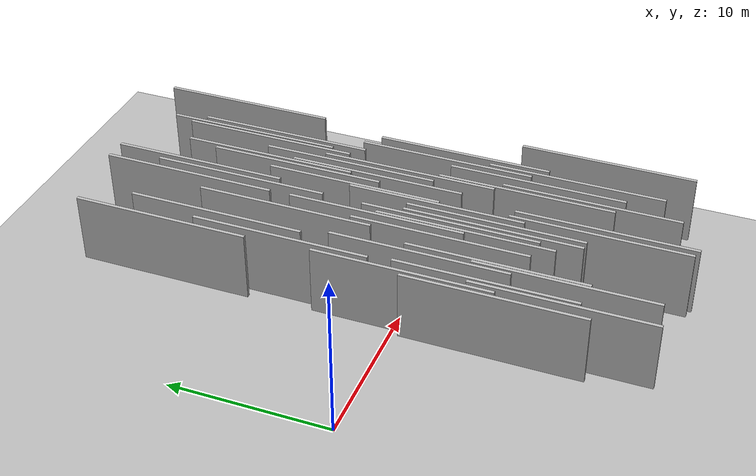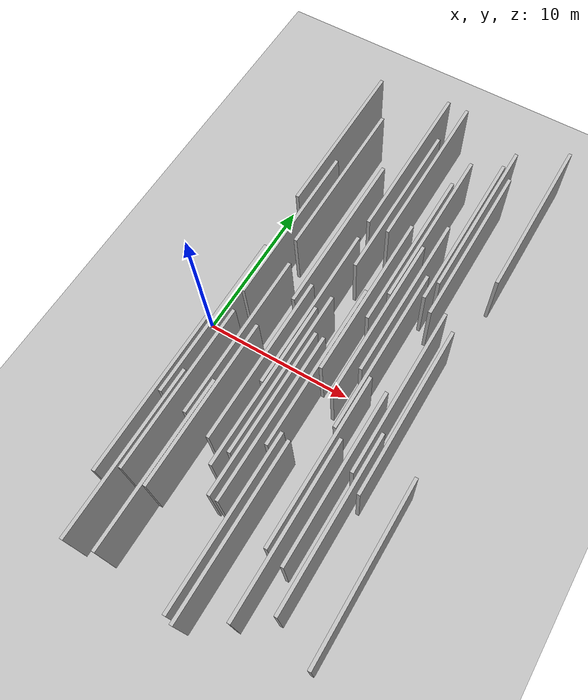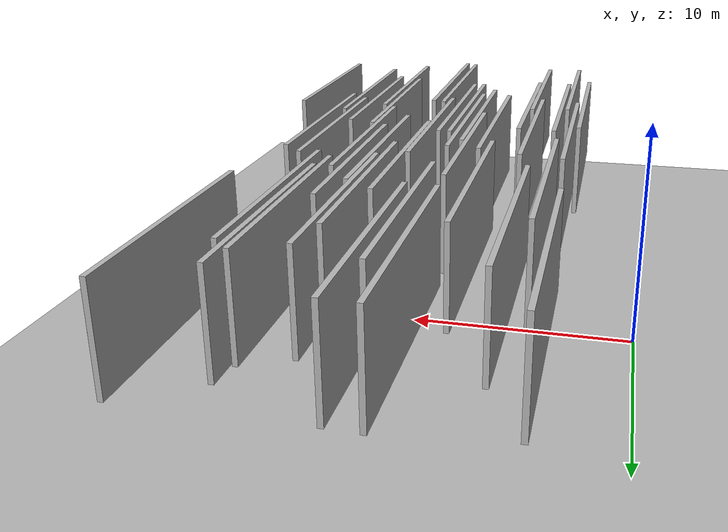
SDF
<?xml version="1.0" encoding="utf-8"?>

<sdf version="1.6">

   <world name="default">

      <gui fullscreen="0">

         <camera name="user_camera">

            <pose>-15 0 4.57585 0 0 0</pose>

            <view_controller>orbit</view_controller>

         </camera>

      </gui>

      <scene>

         <sky>

           <clouds>

             <speed>12</speed>

           </clouds>

         </sky>

         <ambient>0.4 0.4 0.4 1</ambient>

         <background>0.7 0.7 0.7 1</background>

         <shadows>1</shadows>

      </scene>

      <gravity>0 0 -9.8066</gravity>

      <magnetic_field>6e-06 2.3e-05 -4.2e-05</magnetic_field>

      <physics default="0" name="default_physics" type="ode">

         <ode>

            <solver>

               <type>quick</type>

               <iters>10</iters>

               <sor>1.0</sor>

               <use_dynamic_moi_rescaling>0</use_dynamic_moi_rescaling>

            </solver>

            <constraints>

               <cfm>0</cfm>

               <erp>0.2</erp>

               <contact_max_correcting_vel>100</contact_max_correcting_vel>

               <contact_surface_layer>0.001</contact_surface_layer>

            </constraints>

         </ode>

         <max_step_size>0.004</max_step_size>

         <real_time_factor>1</real_time_factor>

         <real_time_update_rate>250</real_time_update_rate>

      </physics>

      <light name="sun" type="directional">

         <cast_shadows>1</cast_shadows>

         <pose>0 0 10 0 0 0</pose>

         <diffuse>0.8 0.8 0.8 1</diffuse>

         <specular>0.2 0.2 0.2 1</specular>

         <attenuation>

            <range>1000</range>

            <constant>0.9</constant>

            <linear>0.01</linear>

            <quadratic>0.001</quadratic>

         </attenuation>

         <direction>-0.5 0.1 -0.9</direction>

      </light>

      <include>

         <name>ground_plane_1</name>

         <uri>model://HANNAS_ground_plane</uri>

         <pose>0 0 0  0 0 0</pose>

      </include>

      <include>

         <name>ground_plane_2</name>

         <uri>model://HANNAS_ground_plane</uri>

         <pose>100 0 0  0 0 0</pose>

      </include>

      <model name="HANNAS_wall_1">

         <static>1</static>

         <pose frame="">15.4531 11.7553 5.0 0.000000 0.000000 1.570796</pose>

         <link name="link">

            <pose frame="">0 0 2.00 0 0 0</pose>

            <collision name="collision">

               <geometry>

                  <box>

                     <size>10.00 0.2 4.00</size>

                  </box>

               </geometry>

               <max_contacts>10</max_contacts>

               <surface>

                  <contact>

                     <ode/>

                  </contact>

                  <bounce/>

                  <friction>

                     <torsional>

                        <ode/>

                     </torsional>

                     <ode/>

                  </friction>

               </surface>

            </collision>

            <visual name="visual">

               <cast_shadows>0</cast_shadows>

               <geometry>

                  <box>

                     <size>10.00 0.2 4.00</size>

                  </box>

               </geometry>

               <material>

                  <script>

                     <uri>model://HANNAS_wall/materials/scripts</uri>

                     <uri>model://HANNAS_wall/materials/textures</uri>

                     <name>vrc/HANNAS_wall</name>

                  </script>

               </material>

            </visual>

            <self_collide>0</self_collide>

            <enable_wind>0</enable_wind>

            <kinematic>0</kinematic>

         </link>

      </model>

      <model name="HANNAS_wall_2">

         <static>1</static>

         <pose frame="">7.5312 11.6981 5.0 0.000000 0.000000 1.570796</pose>

         <link name="link">

            <pose frame="">0 0 2.00 0 0 0</pose>

            <collision name="collision">

               <geometry>

                  <box>

                     <size>10.00 0.2 4.00</size>

                  </box>

               </geometry>

               <max_contacts>10</max_contacts>

               <surface>

                  <contact>

                     <ode/>

                  </contact>

                  <bounce/>

                  <friction>

                     <torsional>

                        <ode/>

                     </torsional>

                     <ode/>

                  </friction>

               </surface>

            </collision>

            <visual name="visual">

               <cast_shadows>0</cast_shadows>

               <geometry>

                  <box>

                     <size>10.00 0.2 4.00</size>

                  </box>

               </geometry>

               <material>

                  <script>

                     <uri>model://HANNAS_wall/materials/scripts</uri>

                     <uri>model://HANNAS_wall/materials/textures</uri>

                     <name>vrc/HANNAS_wall</name>

                  </script>

               </material>

            </visual>

            <self_collide>0</self_collide>

            <enable_wind>0</enable_wind>

            <kinematic>0</kinematic>

         </link>

      </model>

      <model name="HANNAS_wall_3">

         <static>1</static>

         <pose frame="">11.5941 3.6500 5.0 0.000000 0.000000 1.570796</pose>

         <link name="link">

            <pose frame="">0 0 2.00 0 0 0</pose>

            <collision name="collision">

               <geometry>

                  <box>

                     <size>10.00 0.2 4.00</size>

                  </box>

               </geometry>

               <max_contacts>10</max_contacts>

               <surface>

                  <contact>

                     <ode/>

                  </contact>

                  <bounce/>

                  <friction>

                     <torsional>

                        <ode/>

                     </torsional>

                     <ode/>

                  </friction>

               </surface>

            </collision>

            <visual name="visual">

               <cast_shadows>0</cast_shadows>

               <geometry>

                  <box>

                     <size>10.00 0.2 4.00</size>

                  </box>

               </geometry>

               <material>

                  <script>

                     <uri>model://HANNAS_wall/materials/scripts</uri>

                     <uri>model://HANNAS_wall/materials/textures</uri>

                     <name>vrc/HANNAS_wall</name>

                  </script>

               </material>

            </visual>

            <self_collide>0</self_collide>

            <enable_wind>0</enable_wind>

            <kinematic>0</kinematic>

         </link>

      </model>

      <model name="HANNAS_wall_4">

         <static>1</static>

         <pose frame="">5.4451 -10.5621 5.0 0.000000 0.000000 1.570796</pose>

         <link name="link">

            <pose frame="">0 0 2.00 0 0 0</pose>

            <collision name="collision">

               <geometry>

                  <box>

                     <size>10.00 0.2 4.00</size>

                  </box>

               </geometry>

               <max_contacts>10</max_contacts>

               <surface>

                  <contact>

                     <ode/>

                  </contact>

                  <bounce/>

                  <friction>

                     <torsional>

                        <ode/>

                     </torsional>

                     <ode/>

                  </friction>

               </surface>

            </collision>

            <visual name="visual">

               <cast_shadows>0</cast_shadows>

               <geometry>

                  <box>

                     <size>10.00 0.2 4.00</size>

                  </box>

               </geometry>

               <material>

                  <script>

                     <uri>model://HANNAS_wall/materials/scripts</uri>

                     <uri>model://HANNAS_wall/materials/textures</uri>

                     <name>vrc/HANNAS_wall</name>

                  </script>

               </material>

            </visual>

            <self_collide>0</self_collide>

            <enable_wind>0</enable_wind>

            <kinematic>0</kinematic>

         </link>

      </model>

      <model name="HANNAS_wall_5">

         <static>1</static>

         <pose frame="">5.1329 -2.7980 5.0 0.000000 0.000000 1.570796</pose>

         <link name="link">

            <pose frame="">0 0 2.00 0 0 0</pose>

            <collision name="collision">

               <geometry>

                  <box>

                     <size>10.00 0.2 4.00</size>

                  </box>

               </geometry>

               <max_contacts>10</max_contacts>

               <surface>

                  <contact>

                     <ode/>

                  </contact>

                  <bounce/>

                  <friction>

                     <torsional>

                        <ode/>

                     </torsional>

                     <ode/>

                  </friction>

               </surface>

            </collision>

            <visual name="visual">

               <cast_shadows>0</cast_shadows>

               <geometry>

                  <box>

                     <size>10.00 0.2 4.00</size>

                  </box>

               </geometry>

               <material>

                  <script>

                     <uri>model://HANNAS_wall/materials/scripts</uri>

                     <uri>model://HANNAS_wall/materials/textures</uri>

                     <name>vrc/HANNAS_wall</name>

                  </script>

               </material>

            </visual>

            <self_collide>0</self_collide>

            <enable_wind>0</enable_wind>

            <kinematic>0</kinematic>

         </link>

      </model>

      <model name="HANNAS_wall_6">

         <static>1</static>

         <pose frame="">3.1832 11.1690 5.0 0.000000 0.000000 1.570796</pose>

         <link name="link">

            <pose frame="">0 0 2.00 0 0 0</pose>

            <collision name="collision">

               <geometry>

                  <box>

                     <size>10.00 0.2 4.00</size>

                  </box>

               </geometry>

               <max_contacts>10</max_contacts>

               <surface>

                  <contact>

                     <ode/>

                  </contact>

                  <bounce/>

                  <friction>

                     <torsional>

                        <ode/>

                     </torsional>

                     <ode/>

                  </friction>

               </surface>

            </collision>

            <visual name="visual">

               <cast_shadows>0</cast_shadows>

               <geometry>

                  <box>

                     <size>10.00 0.2 4.00</size>

                  </box>

               </geometry>

               <material>

                  <script>

                     <uri>model://HANNAS_wall/materials/scripts</uri>

                     <uri>model://HANNAS_wall/materials/textures</uri>

                     <name>vrc/HANNAS_wall</name>

                  </script>

               </material>

            </visual>

            <self_collide>0</self_collide>

            <enable_wind>0</enable_wind>

            <kinematic>0</kinematic>

         </link>

      </model>

      <model name="HANNAS_wall_7">

         <static>1</static>

         <pose frame="">3.4054 -2.4677 5.0 0.000000 0.000000 1.570796</pose>

         <link name="link">

            <pose frame="">0 0 2.00 0 0 0</pose>

            <collision name="collision">

               <geometry>

                  <box>

                     <size>10.00 0.2 4.00</size>

                  </box>

               </geometry>

               <max_contacts>10</max_contacts>

               <surface>

                  <contact>

                     <ode/>

                  </contact>

                  <bounce/>

                  <friction>

                     <torsional>

                        <ode/>

                     </torsional>

                     <ode/>

                  </friction>

               </surface>

            </collision>

            <visual name="visual">

               <cast_shadows>0</cast_shadows>

               <geometry>

                  <box>

                     <size>10.00 0.2 4.00</size>

                  </box>

               </geometry>

               <material>

                  <script>

                     <uri>model://HANNAS_wall/materials/scripts</uri>

                     <uri>model://HANNAS_wall/materials/textures</uri>

                     <name>vrc/HANNAS_wall</name>

                  </script>

               </material>

            </visual>

            <self_collide>0</self_collide>

            <enable_wind>0</enable_wind>

            <kinematic>0</kinematic>

         </link>

      </model>

      <model name="HANNAS_wall_8">

         <static>1</static>

         <pose frame="">6.8893 -3.3155 5.0 0.000000 0.000000 1.570796</pose>

         <link name="link">

            <pose frame="">0 0 2.00 0 0 0</pose>

            <collision name="collision">

               <geometry>

                  <box>

                     <size>10.00 0.2 4.00</size>

                  </box>

               </geometry>

               <max_contacts>10</max_contacts>

               <surface>

                  <contact>

                     <ode/>

                  </contact>

                  <bounce/>

                  <friction>

                     <torsional>

                        <ode/>

                     </torsional>

                     <ode/>

                  </friction>

               </surface>

            </collision>

            <visual name="visual">

               <cast_shadows>0</cast_shadows>

               <geometry>

                  <box>

                     <size>10.00 0.2 4.00</size>

                  </box>

               </geometry>

               <material>

                  <script>

                     <uri>model://HANNAS_wall/materials/scripts</uri>

                     <uri>model://HANNAS_wall/materials/textures</uri>

                     <name>vrc/HANNAS_wall</name>

                  </script>

               </material>

            </visual>

            <self_collide>0</self_collide>

            <enable_wind>0</enable_wind>

            <kinematic>0</kinematic>

         </link>

      </model>

      <model name="HANNAS_wall_9">

         <static>1</static>

         <pose frame="">13.9263 -1.3041 5.0 0.000000 0.000000 1.570796</pose>

         <link name="link">

            <pose frame="">0 0 2.00 0 0 0</pose>

            <collision name="collision">

               <geometry>

                  <box>

                     <size>10.00 0.2 4.00</size>

                  </box>

               </geometry>

               <max_contacts>10</max_contacts>

               <surface>

                  <contact>

                     <ode/>

                  </contact>

                  <bounce/>

                  <friction>

                     <torsional>

                        <ode/>

                     </torsional>

                     <ode/>

                  </friction>

               </surface>

            </collision>

            <visual name="visual">

               <cast_shadows>0</cast_shadows>

               <geometry>

                  <box>

                     <size>10.00 0.2 4.00</size>

                  </box>

               </geometry>

               <material>

                  <script>

                     <uri>model://HANNAS_wall/materials/scripts</uri>

                     <uri>model://HANNAS_wall/materials/textures</uri>

                     <name>vrc/HANNAS_wall</name>

                  </script>

               </material>

            </visual>

            <self_collide>0</self_collide>

            <enable_wind>0</enable_wind>

            <kinematic>0</kinematic>

         </link>

      </model>

      <model name="HANNAS_wall_10">

         <static>1</static>

         <pose frame="">3.8024 -10.8481 5.0 0.000000 0.000000 1.570796</pose>

         <link name="link">

            <pose frame="">0 0 2.00 0 0 0</pose>

            <collision name="collision">

               <geometry>

                  <box>

                     <size>10.00 0.2 4.00</size>

                  </box>

               </geometry>

               <max_contacts>10</max_contacts>

               <surface>

                  <contact>

                     <ode/>

                  </contact>

                  <bounce/>

                  <friction>

                     <torsional>

                        <ode/>

                     </torsional>

                     <ode/>

                  </friction>

               </surface>

            </collision>

            <visual name="visual">

               <cast_shadows>0</cast_shadows>

               <geometry>

                  <box>

                     <size>10.00 0.2 4.00</size>

                  </box>

               </geometry>

               <material>

                  <script>

                     <uri>model://HANNAS_wall/materials/scripts</uri>

                     <uri>model://HANNAS_wall/materials/textures</uri>

                     <name>vrc/HANNAS_wall</name>

                  </script>

               </material>

            </visual>

            <self_collide>0</self_collide>

            <enable_wind>0</enable_wind>

            <kinematic>0</kinematic>

         </link>

      </model>

      <model name="HANNAS_wall_11">

         <static>1</static>

         <pose frame="">10.4314 6.4024 5.0 0.000000 0.000000 1.570796</pose>

         <link name="link">

            <pose frame="">0 0 2.00 0 0 0</pose>

            <collision name="collision">

               <geometry>

                  <box>

                     <size>10.00 0.2 4.00</size>

                  </box>

               </geometry>

               <max_contacts>10</max_contacts>

               <surface>

                  <contact>

                     <ode/>

                  </contact>

                  <bounce/>

                  <friction>

                     <torsional>

                        <ode/>

                     </torsional>

                     <ode/>

                  </friction>

               </surface>

            </collision>

            <visual name="visual">

               <cast_shadows>0</cast_shadows>

               <geometry>

                  <box>

                     <size>10.00 0.2 4.00</size>

                  </box>

               </geometry>

               <material>

                  <script>

                     <uri>model://HANNAS_wall/materials/scripts</uri>

                     <uri>model://HANNAS_wall/materials/textures</uri>

                     <name>vrc/HANNAS_wall</name>

                  </script>

               </material>

            </visual>

            <self_collide>0</self_collide>

            <enable_wind>0</enable_wind>

            <kinematic>0</kinematic>

         </link>

      </model>

      <model name="HANNAS_wall_12">

         <static>1</static>

         <pose frame="">7.5670 0.5276 5.0 0.000000 0.000000 1.570796</pose>

         <link name="link">

            <pose frame="">0 0 2.00 0 0 0</pose>

            <collision name="collision">

               <geometry>

                  <box>

                     <size>10.00 0.2 4.00</size>

                  </box>

               </geometry>

               <max_contacts>10</max_contacts>

               <surface>

                  <contact>

                     <ode/>

                  </contact>

                  <bounce/>

                  <friction>

                     <torsional>

                        <ode/>

                     </torsional>

                     <ode/>

                  </friction>

               </surface>

            </collision>

            <visual name="visual">

               <cast_shadows>0</cast_shadows>

               <geometry>

                  <box>

                     <size>10.00 0.2 4.00</size>

                  </box>

               </geometry>

               <material>

                  <script>

                     <uri>model://HANNAS_wall/materials/scripts</uri>

                     <uri>model://HANNAS_wall/materials/textures</uri>

                     <name>vrc/HANNAS_wall</name>

                  </script>

               </material>

            </visual>

            <self_collide>0</self_collide>

            <enable_wind>0</enable_wind>

            <kinematic>0</kinematic>

         </link>

      </model>

      <model name="HANNAS_wall_13">

         <static>1</static>

         <pose frame="">12.0381 0.2697 5.0 0.000000 0.000000 1.570796</pose>

         <link name="link">

            <pose frame="">0 0 2.00 0 0 0</pose>

            <collision name="collision">

               <geometry>

                  <box>

                     <size>10.00 0.2 4.00</size>

                  </box>

               </geometry>

               <max_contacts>10</max_contacts>

               <surface>

                  <contact>

                     <ode/>

                  </contact>

                  <bounce/>

                  <friction>

                     <torsional>

                        <ode/>

                     </torsional>

                     <ode/>

                  </friction>

               </surface>

            </collision>

            <visual name="visual">

               <cast_shadows>0</cast_shadows>

               <geometry>

                  <box>

                     <size>10.00 0.2 4.00</size>

                  </box>

               </geometry>

               <material>

                  <script>

                     <uri>model://HANNAS_wall/materials/scripts</uri>

                     <uri>model://HANNAS_wall/materials/textures</uri>

                     <name>vrc/HANNAS_wall</name>

                  </script>

               </material>

            </visual>

            <self_collide>0</self_collide>

            <enable_wind>0</enable_wind>

            <kinematic>0</kinematic>

         </link>

      </model>

      <model name="HANNAS_wall_14">

         <static>1</static>

         <pose frame="">12.2694 -6.4486 5.0 0.000000 0.000000 1.570796</pose>

         <link name="link">

            <pose frame="">0 0 2.00 0 0 0</pose>

            <collision name="collision">

               <geometry>

                  <box>

                     <size>10.00 0.2 4.00</size>

                  </box>

               </geometry>

               <max_contacts>10</max_contacts>

               <surface>

                  <contact>

                     <ode/>

                  </contact>

                  <bounce/>

                  <friction>

                     <torsional>

                        <ode/>

                     </torsional>

                     <ode/>

                  </friction>

               </surface>

            </collision>

            <visual name="visual">

               <cast_shadows>0</cast_shadows>

               <geometry>

                  <box>

                     <size>10.00 0.2 4.00</size>

                  </box>

               </geometry>

               <material>

                  <script>

                     <uri>model://HANNAS_wall/materials/scripts</uri>

                     <uri>model://HANNAS_wall/materials/textures</uri>

                     <name>vrc/HANNAS_wall</name>

                  </script>

               </material>

            </visual>

            <self_collide>0</self_collide>

            <enable_wind>0</enable_wind>

            <kinematic>0</kinematic>

         </link>

      </model>

      <model name="HANNAS_wall_15">

         <static>1</static>

         <pose frame="">16.7560 -9.9379 5.0 0.000000 0.000000 1.570796</pose>

         <link name="link">

            <pose frame="">0 0 2.00 0 0 0</pose>

            <collision name="collision">

               <geometry>

                  <box>

                     <size>10.00 0.2 4.00</size>

                  </box>

               </geometry>

               <max_contacts>10</max_contacts>

               <surface>

                  <contact>

                     <ode/>

                  </contact>

                  <bounce/>

                  <friction>

                     <torsional>

                        <ode/>

                     </torsional>

                     <ode/>

                  </friction>

               </surface>

            </collision>

            <visual name="visual">

               <cast_shadows>0</cast_shadows>

               <geometry>

                  <box>

                     <size>10.00 0.2 4.00</size>

                  </box>

               </geometry>

               <material>

                  <script>

                     <uri>model://HANNAS_wall/materials/scripts</uri>

                     <uri>model://HANNAS_wall/materials/textures</uri>

                     <name>vrc/HANNAS_wall</name>

                  </script>

               </material>

            </visual>

            <self_collide>0</self_collide>

            <enable_wind>0</enable_wind>

            <kinematic>0</kinematic>

         </link>

      </model>

      <model name="HANNAS_wall_16">

         <static>1</static>

         <pose frame="">8.7775 11.6468 5.0 0.000000 0.000000 1.570796</pose>

         <link name="link">

            <pose frame="">0 0 2.00 0 0 0</pose>

            <collision name="collision">

               <geometry>

                  <box>

                     <size>10.00 0.2 4.00</size>

                  </box>

               </geometry>

               <max_contacts>10</max_contacts>

               <surface>

                  <contact>

                     <ode/>

                  </contact>

                  <bounce/>

                  <friction>

                     <torsional>

                        <ode/>

                     </torsional>

                     <ode/>

                  </friction>

               </surface>

            </collision>

            <visual name="visual">

               <cast_shadows>0</cast_shadows>

               <geometry>

                  <box>

                     <size>10.00 0.2 4.00</size>

                  </box>

               </geometry>

               <material>

                  <script>

                     <uri>model://HANNAS_wall/materials/scripts</uri>

                     <uri>model://HANNAS_wall/materials/textures</uri>

                     <name>vrc/HANNAS_wall</name>

                  </script>

               </material>

            </visual>

            <self_collide>0</self_collide>

            <enable_wind>0</enable_wind>

            <kinematic>0</kinematic>

         </link>

      </model>

      <model name="HANNAS_wall_17">

         <static>1</static>

         <pose frame="">9.7936 2.6849 5.0 0.000000 0.000000 1.570796</pose>

         <link name="link">

            <pose frame="">0 0 2.00 0 0 0</pose>

            <collision name="collision">

               <geometry>

                  <box>

                     <size>10.00 0.2 4.00</size>

                  </box>

               </geometry>

               <max_contacts>10</max_contacts>

               <surface>

                  <contact>

                     <ode/>

                  </contact>

                  <bounce/>

                  <friction>

                     <torsional>

                        <ode/>

                     </torsional>

                     <ode/>

                  </friction>

               </surface>

            </collision>

            <visual name="visual">

               <cast_shadows>0</cast_shadows>

               <geometry>

                  <box>

                     <size>10.00 0.2 4.00</size>

                  </box>

               </geometry>

               <material>

                  <script>

                     <uri>model://HANNAS_wall/materials/scripts</uri>

                     <uri>model://HANNAS_wall/materials/textures</uri>

                     <name>vrc/HANNAS_wall</name>

                  </script>

               </material>

            </visual>

            <self_collide>0</self_collide>

            <enable_wind>0</enable_wind>

            <kinematic>0</kinematic>

         </link>

      </model>

      <model name="HANNAS_wall_18">

         <static>1</static>

         <pose frame="">13.3818 -6.7837 5.0 0.000000 0.000000 1.570796</pose>

         <link name="link">

            <pose frame="">0 0 2.00 0 0 0</pose>

            <collision name="collision">

               <geometry>

                  <box>

                     <size>10.00 0.2 4.00</size>

                  </box>

               </geometry>

               <max_contacts>10</max_contacts>

               <surface>

                  <contact>

                     <ode/>

                  </contact>

                  <bounce/>

                  <friction>

                     <torsional>

                        <ode/>

                     </torsional>

                     <ode/>

                  </friction>

               </surface>

            </collision>

            <visual name="visual">

               <cast_shadows>0</cast_shadows>

               <geometry>

                  <box>

                     <size>10.00 0.2 4.00</size>

                  </box>

               </geometry>

               <material>

                  <script>

                     <uri>model://HANNAS_wall/materials/scripts</uri>

                     <uri>model://HANNAS_wall/materials/textures</uri>

                     <name>vrc/HANNAS_wall</name>

                  </script>

               </material>

            </visual>

            <self_collide>0</self_collide>

            <enable_wind>0</enable_wind>

            <kinematic>0</kinematic>

         </link>

      </model>

      <model name="HANNAS_wall_19">

         <static>1</static>

         <pose frame="">8.5625 -5.6985 5.0 0.000000 0.000000 1.570796</pose>

         <link name="link">

            <pose frame="">0 0 2.00 0 0 0</pose>

            <collision name="collision">

               <geometry>

                  <box>

                     <size>10.00 0.2 4.00</size>

                  </box>

               </geometry>

               <max_contacts>10</max_contacts>

               <surface>

                  <contact>

                     <ode/>

                  </contact>

                  <bounce/>

                  <friction>

                     <torsional>

                        <ode/>

                     </torsional>

                     <ode/>

                  </friction>

               </surface>

            </collision>

            <visual name="visual">

               <cast_shadows>0</cast_shadows>

               <geometry>

                  <box>

                     <size>10.00 0.2 4.00</size>

                  </box>

               </geometry>

               <material>

                  <script>

                     <uri>model://HANNAS_wall/materials/scripts</uri>

                     <uri>model://HANNAS_wall/materials/textures</uri>

                     <name>vrc/HANNAS_wall</name>

                  </script>

               </material>

            </visual>

            <self_collide>0</self_collide>

            <enable_wind>0</enable_wind>

            <kinematic>0</kinematic>

         </link>

      </model>

      <model name="HANNAS_wall_20">

         <static>1</static>

         <pose frame="">4.1009 -6.7171 5.0 0.000000 0.000000 1.570796</pose>

         <link name="link">

            <pose frame="">0 0 2.00 0 0 0</pose>

            <collision name="collision">

               <geometry>

                  <box>

                     <size>10.00 0.2 4.00</size>

                  </box>

               </geometry>

               <max_contacts>10</max_contacts>

               <surface>

                  <contact>

                     <ode/>

                  </contact>

                  <bounce/>

                  <friction>

                     <torsional>

                        <ode/>

                     </torsional>

                     <ode/>

                  </friction>

               </surface>

            </collision>

            <visual name="visual">

               <cast_shadows>0</cast_shadows>

               <geometry>

                  <box>

                     <size>10.00 0.2 4.00</size>

                  </box>

               </geometry>

               <material>

                  <script>

                     <uri>model://HANNAS_wall/materials/scripts</uri>

                     <uri>model://HANNAS_wall/materials/textures</uri>

                     <name>vrc/HANNAS_wall</name>

                  </script>

               </material>

            </visual>

            <self_collide>0</self_collide>

            <enable_wind>0</enable_wind>

            <kinematic>0</kinematic>

         </link>

      </model>

      <model name="HANNAS_wall_21">

         <static>1</static>

         <pose frame="">14.7461 -2.0844 5.0 0.000000 0.000000 1.570796</pose>

         <link name="link">

            <pose frame="">0 0 2.00 0 0 0</pose>

            <collision name="collision">

               <geometry>

                  <box>

                     <size>10.00 0.2 4.00</size>

                  </box>

               </geometry>

               <max_contacts>10</max_contacts>

               <surface>

                  <contact>

                     <ode/>

                  </contact>

                  <bounce/>

                  <friction>

                     <torsional>

                        <ode/>

                     </torsional>

                     <ode/>

                  </friction>

               </surface>

            </collision>

            <visual name="visual">

               <cast_shadows>0</cast_shadows>

               <geometry>

                  <box>

                     <size>10.00 0.2 4.00</size>

                  </box>

               </geometry>

               <material>

                  <script>

                     <uri>model://HANNAS_wall/materials/scripts</uri>

                     <uri>model://HANNAS_wall/materials/textures</uri>

                     <name>vrc/HANNAS_wall</name>

                  </script>

               </material>

            </visual>

            <self_collide>0</self_collide>

            <enable_wind>0</enable_wind>

            <kinematic>0</kinematic>

         </link>

      </model>

      <model name="HANNAS_wall_22">

         <static>1</static>

         <pose frame="">12.7361 10.1466 5.0 0.000000 0.000000 1.570796</pose>

         <link name="link">

            <pose frame="">0 0 2.00 0 0 0</pose>

            <collision name="collision">

               <geometry>

                  <box>

                     <size>10.00 0.2 4.00</size>

                  </box>

               </geometry>

               <max_contacts>10</max_contacts>

               <surface>

                  <contact>

                     <ode/>

                  </contact>

                  <bounce/>

                  <friction>

                     <torsional>

                        <ode/>

                     </torsional>

                     <ode/>

                  </friction>

               </surface>

            </collision>

            <visual name="visual">

               <cast_shadows>0</cast_shadows>

               <geometry>

                  <box>

                     <size>10.00 0.2 4.00</size>

                  </box>

               </geometry>

               <material>

                  <script>

                     <uri>model://HANNAS_wall/materials/scripts</uri>

                     <uri>model://HANNAS_wall/materials/textures</uri>

                     <name>vrc/HANNAS_wall</name>

                  </script>

               </material>

            </visual>

            <self_collide>0</self_collide>

            <enable_wind>0</enable_wind>

            <kinematic>0</kinematic>

         </link>

      </model>

      <model name="HANNAS_wall_23">

         <static>1</static>

         <pose frame="">3.0648 -7.4768 5.0 0.000000 0.000000 1.570796</pose>

         <link name="link">

            <pose frame="">0 0 2.00 0 0 0</pose>

            <collision name="collision">

               <geometry>

                  <box>

                     <size>10.00 0.2 4.00</size>

                  </box>

               </geometry>

               <max_contacts>10</max_contacts>

               <surface>

                  <contact>

                     <ode/>

                  </contact>

                  <bounce/>

                  <friction>

                     <torsional>

                        <ode/>

                     </torsional>

                     <ode/>

                  </friction>

               </surface>

            </collision>

            <visual name="visual">

               <cast_shadows>0</cast_shadows>

               <geometry>

                  <box>

                     <size>10.00 0.2 4.00</size>

                  </box>

               </geometry>

               <material>

                  <script>

                     <uri>model://HANNAS_wall/materials/scripts</uri>

                     <uri>model://HANNAS_wall/materials/textures</uri>

                     <name>vrc/HANNAS_wall</name>

                  </script>

               </material>

            </visual>

            <self_collide>0</self_collide>

            <enable_wind>0</enable_wind>

            <kinematic>0</kinematic>

         </link>

      </model>

      <model name="HANNAS_wall_24">

         <static>1</static>

         <pose frame="">12.6230 -10.0456 5.0 0.000000 0.000000 1.570796</pose>

         <link name="link">

            <pose frame="">0 0 2.00 0 0 0</pose>

            <collision name="collision">

               <geometry>

                  <box>

                     <size>10.00 0.2 4.00</size>

                  </box>

               </geometry>

               <max_contacts>10</max_contacts>

               <surface>

                  <contact>

                     <ode/>

                  </contact>

                  <bounce/>

                  <friction>

                     <torsional>

                        <ode/>

                     </torsional>

                     <ode/>

                  </friction>

               </surface>

            </collision>

            <visual name="visual">

               <cast_shadows>0</cast_shadows>

               <geometry>

                  <box>

                     <size>10.00 0.2 4.00</size>

                  </box>

               </geometry>

               <material>

                  <script>

                     <uri>model://HANNAS_wall/materials/scripts</uri>

                     <uri>model://HANNAS_wall/materials/textures</uri>

                     <name>vrc/HANNAS_wall</name>

                  </script>

               </material>

            </visual>

            <self_collide>0</self_collide>

            <enable_wind>0</enable_wind>

            <kinematic>0</kinematic>

         </link>

      </model>

      <model name="HANNAS_wall_25">

         <static>1</static>

         <pose frame="">14.2860 -8.7654 5.0 0.000000 0.000000 1.570796</pose>

         <link name="link">

            <pose frame="">0 0 2.00 0 0 0</pose>

            <collision name="collision">

               <geometry>

                  <box>

                     <size>10.00 0.2 4.00</size>

                  </box>

               </geometry>

               <max_contacts>10</max_contacts>

               <surface>

                  <contact>

                     <ode/>

                  </contact>

                  <bounce/>

                  <friction>

                     <torsional>

                        <ode/>

                     </torsional>

                     <ode/>

                  </friction>

               </surface>

            </collision>

            <visual name="visual">

               <cast_shadows>0</cast_shadows>

               <geometry>

                  <box>

                     <size>10.00 0.2 4.00</size>

                  </box>

               </geometry>

               <material>

                  <script>

                     <uri>model://HANNAS_wall/materials/scripts</uri>

                     <uri>model://HANNAS_wall/materials/textures</uri>

                     <name>vrc/HANNAS_wall</name>

                  </script>

               </material>

            </visual>

            <self_collide>0</self_collide>

            <enable_wind>0</enable_wind>

            <kinematic>0</kinematic>

         </link>

      </model>

      <model name="HANNAS_wall_26">

         <static>1</static>

         <pose frame="">10.9788 1.7926 5.0 0.000000 0.000000 1.570796</pose>

         <link name="link">

            <pose frame="">0 0 2.00 0 0 0</pose>

            <collision name="collision">

               <geometry>

                  <box>

                     <size>10.00 0.2 4.00</size>

                  </box>

               </geometry>

               <max_contacts>10</max_contacts>

               <surface>

                  <contact>

                     <ode/>

                  </contact>

                  <bounce/>

                  <friction>

                     <torsional>

                        <ode/>

                     </torsional>

                     <ode/>

                  </friction>

               </surface>

            </collision>

            <visual name="visual">

               <cast_shadows>0</cast_shadows>

               <geometry>

                  <box>

                     <size>10.00 0.2 4.00</size>

                  </box>

               </geometry>

               <material>

                  <script>

                     <uri>model://HANNAS_wall/materials/scripts</uri>

                     <uri>model://HANNAS_wall/materials/textures</uri>

                     <name>vrc/HANNAS_wall</name>

                  </script>

               </material>

            </visual>

            <self_collide>0</self_collide>

            <enable_wind>0</enable_wind>

            <kinematic>0</kinematic>

         </link>

      </model>

      <model name="HANNAS_wall_27">

         <static>1</static>

         <pose frame="">9.5898 -2.1866 5.0 0.000000 0.000000 1.570796</pose>

         <link name="link">

            <pose frame="">0 0 2.00 0 0 0</pose>

            <collision name="collision">

               <geometry>

                  <box>

                     <size>10.00 0.2 4.00</size>

                  </box>

               </geometry>

               <max_contacts>10</max_contacts>

               <surface>

                  <contact>

                     <ode/>

                  </contact>

                  <bounce/>

                  <friction>

                     <torsional>

                        <ode/>

                     </torsional>

                     <ode/>

                  </friction>

               </surface>

            </collision>

            <visual name="visual">

               <cast_shadows>0</cast_shadows>

               <geometry>

                  <box>

                     <size>10.00 0.2 4.00</size>

                  </box>

               </geometry>

               <material>

                  <script>

                     <uri>model://HANNAS_wall/materials/scripts</uri>

                     <uri>model://HANNAS_wall/materials/textures</uri>

                     <name>vrc/HANNAS_wall</name>

                  </script>

               </material>

            </visual>

            <self_collide>0</self_collide>

            <enable_wind>0</enable_wind>

            <kinematic>0</kinematic>

         </link>

      </model>

      <model name="HANNAS_wall_28">

         <static>1</static>

         <pose frame="">4.6417 8.5941 5.0 0.000000 0.000000 1.570796</pose>

         <link name="link">

            <pose frame="">0 0 2.00 0 0 0</pose>

            <collision name="collision">

               <geometry>

                  <box>

                     <size>10.00 0.2 4.00</size>

                  </box>

               </geometry>

               <max_contacts>10</max_contacts>

               <surface>

                  <contact>

                     <ode/>

                  </contact>

                  <bounce/>

                  <friction>

                     <torsional>

                        <ode/>

                     </torsional>

                     <ode/>

                  </friction>

               </surface>

            </collision>

            <visual name="visual">

               <cast_shadows>0</cast_shadows>

               <geometry>

                  <box>

                     <size>10.00 0.2 4.00</size>

                  </box>

               </geometry>

               <material>

                  <script>

                     <uri>model://HANNAS_wall/materials/scripts</uri>

                     <uri>model://HANNAS_wall/materials/textures</uri>

                     <name>vrc/HANNAS_wall</name>

                  </script>

               </material>

            </visual>

            <self_collide>0</self_collide>

            <enable_wind>0</enable_wind>

            <kinematic>0</kinematic>

         </link>

      </model>

      <model name="HANNAS_wall_29">

         <static>1</static>

         <pose frame="">7.7877 -4.4069 5.0 0.000000 0.000000 1.570796</pose>

         <link name="link">

            <pose frame="">0 0 2.00 0 0 0</pose>

            <collision name="collision">

               <geometry>

                  <box>

                     <size>10.00 0.2 4.00</size>

                  </box>

               </geometry>

               <max_contacts>10</max_contacts>

               <surface>

                  <contact>

                     <ode/>

                  </contact>

                  <bounce/>

                  <friction>

                     <torsional>

                        <ode/>

                     </torsional>

                     <ode/>

                  </friction>

               </surface>

            </collision>

            <visual name="visual">

               <cast_shadows>0</cast_shadows>

               <geometry>

                  <box>

                     <size>10.00 0.2 4.00</size>

                  </box>

               </geometry>

               <material>

                  <script>

                     <uri>model://HANNAS_wall/materials/scripts</uri>

                     <uri>model://HANNAS_wall/materials/textures</uri>

                     <name>vrc/HANNAS_wall</name>

                  </script>

               </material>

            </visual>

            <self_collide>0</self_collide>

            <enable_wind>0</enable_wind>

            <kinematic>0</kinematic>

         </link>

      </model>

      <model name="HANNAS_wall_30">

         <static>1</static>

         <pose frame="">8.2854 8.8772 5.0 0.000000 0.000000 1.570796</pose>

         <link name="link">

            <pose frame="">0 0 2.00 0 0 0</pose>

            <collision name="collision">

               <geometry>

                  <box>

                     <size>10.00 0.2 4.00</size>

                  </box>

               </geometry>

               <max_contacts>10</max_contacts>

               <surface>

                  <contact>

                     <ode/>

                  </contact>

                  <bounce/>

                  <friction>

                     <torsional>

                        <ode/>

                     </torsional>

                     <ode/>

                  </friction>

               </surface>

            </collision>

            <visual name="visual">

               <cast_shadows>0</cast_shadows>

               <geometry>

                  <box>

                     <size>10.00 0.2 4.00</size>

                  </box>

               </geometry>

               <material>

                  <script>

                     <uri>model://HANNAS_wall/materials/scripts</uri>

                     <uri>model://HANNAS_wall/materials/textures</uri>

                     <name>vrc/HANNAS_wall</name>

                  </script>

               </material>

            </visual>

            <self_collide>0</self_collide>

            <enable_wind>0</enable_wind>

            <kinematic>0</kinematic>

         </link>

      </model>

      <model name="HANNAS_wall_31">

         <static>1</static>

         <pose frame="">10.4401 -11.3963 5.0 0.000000 0.000000 1.570796</pose>

         <link name="link">

            <pose frame="">0 0 2.00 0 0 0</pose>

            <collision name="collision">

               <geometry>

                  <box>

                     <size>10.00 0.2 4.00</size>

                  </box>

               </geometry>

               <max_contacts>10</max_contacts>

               <surface>

                  <contact>

                     <ode/>

                  </contact>

                  <bounce/>

                  <friction>

                     <torsional>

                        <ode/>

                     </torsional>

                     <ode/>

                  </friction>

               </surface>

            </collision>

            <visual name="visual">

               <cast_shadows>0</cast_shadows>

               <geometry>

                  <box>

                     <size>10.00 0.2 4.00</size>

                  </box>

               </geometry>

               <material>

                  <script>

                     <uri>model://HANNAS_wall/materials/scripts</uri>

                     <uri>model://HANNAS_wall/materials/textures</uri>

                     <name>vrc/HANNAS_wall</name>

                  </script>

               </material>

            </visual>

            <self_collide>0</self_collide>

            <enable_wind>0</enable_wind>

            <kinematic>0</kinematic>

         </link>

      </model>

      <model name="HANNAS_wall_32">

         <static>1</static>

         <pose frame="">6.4770 5.3683 5.0 0.000000 0.000000 1.570796</pose>

         <link name="link">

            <pose frame="">0 0 2.00 0 0 0</pose>

            <collision name="collision">

               <geometry>

                  <box>

                     <size>10.00 0.2 4.00</size>

                  </box>

               </geometry>

               <max_contacts>10</max_contacts>

               <surface>

                  <contact>

                     <ode/>

                  </contact>

                  <bounce/>

                  <friction>

                     <torsional>

                        <ode/>

                     </torsional>

                     <ode/>

                  </friction>

               </surface>

            </collision>

            <visual name="visual">

               <cast_shadows>0</cast_shadows>

               <geometry>

                  <box>

                     <size>10.00 0.2 4.00</size>

                  </box>

               </geometry>

               <material>

                  <script>

                     <uri>model://HANNAS_wall/materials/scripts</uri>

                     <uri>model://HANNAS_wall/materials/textures</uri>

                     <name>vrc/HANNAS_wall</name>

                  </script>

               </material>

            </visual>

            <self_collide>0</self_collide>

            <enable_wind>0</enable_wind>

            <kinematic>0</kinematic>

         </link>

      </model>

      <model name="HANNAS_wall_33">

         <static>1</static>

         <pose frame="">9.0533 -5.7252 5.0 0.000000 0.000000 1.570796</pose>

         <link name="link">

            <pose frame="">0 0 2.00 0 0 0</pose>

            <collision name="collision">

               <geometry>

                  <box>

                     <size>10.00 0.2 4.00</size>

                  </box>

               </geometry>

               <max_contacts>10</max_contacts>

               <surface>

                  <contact>

                     <ode/>

                  </contact>

                  <bounce/>

                  <friction>

                     <torsional>

                        <ode/>

                     </torsional>

                     <ode/>

                  </friction>

               </surface>

            </collision>

            <visual name="visual">

               <cast_shadows>0</cast_shadows>

               <geometry>

                  <box>

                     <size>10.00 0.2 4.00</size>

                  </box>

               </geometry>

               <material>

                  <script>

                     <uri>model://HANNAS_wall/materials/scripts</uri>

                     <uri>model://HANNAS_wall/materials/textures</uri>

                     <name>vrc/HANNAS_wall</name>

                  </script>

               </material>

            </visual>

            <self_collide>0</self_collide>

            <enable_wind>0</enable_wind>

            <kinematic>0</kinematic>

         </link>

      </model>

      <model name="HANNAS_wall_34">

         <static>1</static>

         <pose frame="">5.6517 -6.8525 5.0 0.000000 0.000000 1.570796</pose>

         <link name="link">

            <pose frame="">0 0 2.00 0 0 0</pose>

            <collision name="collision">

               <geometry>

                  <box>

                     <size>10.00 0.2 4.00</size>

                  </box>

               </geometry>

               <max_contacts>10</max_contacts>

               <surface>

                  <contact>

                     <ode/>

                  </contact>

                  <bounce/>

                  <friction>

                     <torsional>

                        <ode/>

                     </torsional>

                     <ode/>

                  </friction>

               </surface>

            </collision>

            <visual name="visual">

               <cast_shadows>0</cast_shadows>

               <geometry>

                  <box>

                     <size>10.00 0.2 4.00</size>

                  </box>

               </geometry>

               <material>

                  <script>

                     <uri>model://HANNAS_wall/materials/scripts</uri>

                     <uri>model://HANNAS_wall/materials/textures</uri>

                     <name>vrc/HANNAS_wall</name>

                  </script>

               </material>

            </visual>

            <self_collide>0</self_collide>

            <enable_wind>0</enable_wind>

            <kinematic>0</kinematic>

         </link>

      </model>

      <model name="HANNAS_wall_35">

         <static>1</static>

         <pose frame="">9.9285 -11.2080 5.0 0.000000 0.000000 1.570796</pose>

         <link name="link">

            <pose frame="">0 0 2.00 0 0 0</pose>

            <collision name="collision">

               <geometry>

                  <box>

                     <size>10.00 0.2 4.00</size>

                  </box>

               </geometry>

               <max_contacts>10</max_contacts>

               <surface>

                  <contact>

                     <ode/>

                  </contact>

                  <bounce/>

                  <friction>

                     <torsional>

                        <ode/>

                     </torsional>

                     <ode/>

                  </friction>

               </surface>

            </collision>

            <visual name="visual">

               <cast_shadows>0</cast_shadows>

               <geometry>

                  <box>

                     <size>10.00 0.2 4.00</size>

                  </box>

               </geometry>

               <material>

                  <script>

                     <uri>model://HANNAS_wall/materials/scripts</uri>

                     <uri>model://HANNAS_wall/materials/textures</uri>

                     <name>vrc/HANNAS_wall</name>

                  </script>

               </material>

            </visual>

            <self_collide>0</self_collide>

            <enable_wind>0</enable_wind>

            <kinematic>0</kinematic>

         </link>

      </model>

      <model name="HANNAS_wall_36">

         <static>1</static>

         <pose frame="">8.2167 -3.4398 5.0 0.000000 0.000000 1.570796</pose>

         <link name="link">

            <pose frame="">0 0 2.00 0 0 0</pose>

            <collision name="collision">

               <geometry>

                  <box>

                     <size>10.00 0.2 4.00</size>

                  </box>

               </geometry>

               <max_contacts>10</max_contacts>

               <surface>

                  <contact>

                     <ode/>

                  </contact>

                  <bounce/>

                  <friction>

                     <torsional>

                        <ode/>

                     </torsional>

                     <ode/>

                  </friction>

               </surface>

            </collision>

            <visual name="visual">

               <cast_shadows>0</cast_shadows>

               <geometry>

                  <box>

                     <size>10.00 0.2 4.00</size>

                  </box>

               </geometry>

               <material>

                  <script>

                     <uri>model://HANNAS_wall/materials/scripts</uri>

                     <uri>model://HANNAS_wall/materials/textures</uri>

                     <name>vrc/HANNAS_wall</name>

                  </script>

               </material>

            </visual>

            <self_collide>0</self_collide>

            <enable_wind>0</enable_wind>

            <kinematic>0</kinematic>

         </link>

      </model>

      <model name="HANNAS_wall_37">

         <static>1</static>

         <pose frame="">3.8683 4.4992 5.0 0.000000 0.000000 1.570796</pose>

         <link name="link">

            <pose frame="">0 0 2.00 0 0 0</pose>

            <collision name="collision">

               <geometry>

                  <box>

                     <size>10.00 0.2 4.00</size>

                  </box>

               </geometry>

               <max_contacts>10</max_contacts>

               <surface>

                  <contact>

                     <ode/>

                  </contact>

                  <bounce/>

                  <friction>

                     <torsional>

                        <ode/>

                     </torsional>

                     <ode/>

                  </friction>

               </surface>

            </collision>

            <visual name="visual">

               <cast_shadows>0</cast_shadows>

               <geometry>

                  <box>

                     <size>10.00 0.2 4.00</size>

                  </box>

               </geometry>

               <material>

                  <script>

                     <uri>model://HANNAS_wall/materials/scripts</uri>

                     <uri>model://HANNAS_wall/materials/textures</uri>

                     <name>vrc/HANNAS_wall</name>

                  </script>

               </material>

            </visual>

            <self_collide>0</self_collide>

            <enable_wind>0</enable_wind>

            <kinematic>0</kinematic>

         </link>

      </model>

      <model name="HANNAS_wall_38">

         <static>1</static>

         <pose frame="">13.1597 8.3167 5.0 0.000000 0.000000 1.570796</pose>

         <link name="link">

            <pose frame="">0 0 2.00 0 0 0</pose>

            <collision name="collision">

               <geometry>

                  <box>

                     <size>10.00 0.2 4.00</size>

                  </box>

               </geometry>

               <max_contacts>10</max_contacts>

               <surface>

                  <contact>

                     <ode/>

                  </contact>

                  <bounce/>

                  <friction>

                     <torsional>

                        <ode/>

                     </torsional>

                     <ode/>

                  </friction>

               </surface>

            </collision>

            <visual name="visual">

               <cast_shadows>0</cast_shadows>

               <geometry>

                  <box>

                     <size>10.00 0.2 4.00</size>

                  </box>

               </geometry>

               <material>

                  <script>

                     <uri>model://HANNAS_wall/materials/scripts</uri>

                     <uri>model://HANNAS_wall/materials/textures</uri>

                     <name>vrc/HANNAS_wall</name>

                  </script>

               </material>

            </visual>

            <self_collide>0</self_collide>

            <enable_wind>0</enable_wind>

            <kinematic>0</kinematic>

         </link>

      </model>

      <model name="HANNAS_wall_39">

         <static>1</static>

         <pose frame="">10.7532 8.2175 5.0 0.000000 0.000000 1.570796</pose>

         <link name="link">

            <pose frame="">0 0 2.00 0 0 0</pose>

            <collision name="collision">

               <geometry>

                  <box>

                     <size>10.00 0.2 4.00</size>

                  </box>

               </geometry>

               <max_contacts>10</max_contacts>

               <surface>

                  <contact>

                     <ode/>

                  </contact>

                  <bounce/>

                  <friction>

                     <torsional>

                        <ode/>

                     </torsional>

                     <ode/>

                  </friction>

               </surface>

            </collision>

            <visual name="visual">

               <cast_shadows>0</cast_shadows>

               <geometry>

                  <box>

                     <size>10.00 0.2 4.00</size>

                  </box>

               </geometry>

               <material>

                  <script>

                     <uri>model://HANNAS_wall/materials/scripts</uri>

                     <uri>model://HANNAS_wall/materials/textures</uri>

                     <name>vrc/HANNAS_wall</name>

                  </script>

               </material>

            </visual>

            <self_collide>0</self_collide>

            <enable_wind>0</enable_wind>

            <kinematic>0</kinematic>

         </link>

      </model>

      <model name="HANNAS_wall_40">

         <static>1</static>

         <pose frame="">12.4640 8.9863 5.0 0.000000 0.000000 1.570796</pose>

         <link name="link">

            <pose frame="">0 0 2.00 0 0 0</pose>

            <collision name="collision">

               <geometry>

                  <box>

                     <size>10.00 0.2 4.00</size>

                  </box>

               </geometry>

               <max_contacts>10</max_contacts>

               <surface>

                  <contact>

                     <ode/>

                  </contact>

                  <bounce/>

                  <friction>

                     <torsional>

                        <ode/>

                     </torsional>

                     <ode/>

                  </friction>

               </surface>

            </collision>

            <visual name="visual">

               <cast_shadows>0</cast_shadows>

               <geometry>

                  <box>

                     <size>10.00 0.2 4.00</size>

                  </box>

               </geometry>

               <material>

                  <script>

                     <uri>model://HANNAS_wall/materials/scripts</uri>

                     <uri>model://HANNAS_wall/materials/textures</uri>

                     <name>vrc/HANNAS_wall</name>

                  </script>

               </material>

            </visual>

            <self_collide>0</self_collide>

            <enable_wind>0</enable_wind>

            <kinematic>0</kinematic>

         </link>

      </model>

   </world>

</sdf>
